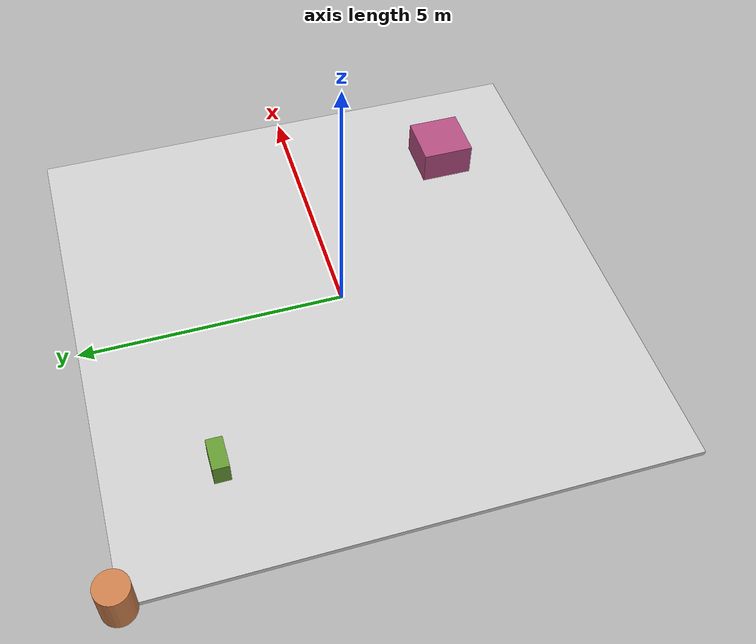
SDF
<sdf version="1.7">
 <world name="smartfarm_slam_world">
  <scene><ambient>0.5 0.5 0.5 1</ambient><grid>true</grid><sky><clouds><speed>5</speed></clouds></sky></scene>
  <light type="directional" name="sunlight">
   <pose>0 0 10 0.6 0 0</pose>
   <diffuse>1 1 1 1</diffuse>
   <specular>0.1 0.1 0.1 1</specular>
   <attenuation>
    <range>100</range>
    <constant>0.9</constant>
    <linear>0.01</linear>
    <quadratic>0.001</quadratic>
   </attenuation>
   <direction>-0.5 0.5 -1</direction>
  </light>
  <model name="floor">
   <static>true</static>
   <link name="floor_link">
    <visual name="floor_visual">
     <geometry><box><size>10 10 0.1</size></box></geometry>
     <material><ambient>0.8 0.8 0.8 1</ambient></material>
    </visual>
    <collision name="floor_collision"><geometry><box><size>10 10 0.1</size></box></geometry></collision>
   </link>
  </model>
  <model name="farm_obstacles">
   <static>true</static>
   <link name="obstacles_link">
    <visual name="tool_1">
     <geometry><box><size>0.6 0.3 0.5</size></box></geometry>
     <pose>-3 3 0.25 0 0 0</pose>
     <material><ambient>0.4 0.6 0.2 1</ambient></material>
    </visual>
    <collision name="tool_1_collision">
     <geometry><box><size>0.6 0.3 0.5</size></box></geometry>
     <pose>-3 3 0.25 0 0 0</pose>
    </collision>
    <visual name="tool_2">
     <geometry><box><size>1 1 0.7</size></box></geometry>
     <pose>3 -3 0.35 0 0 0</pose>
     <material><ambient>0.7 0.3 0.5 1</ambient></material>
    </visual>
    <collision name="tool_2_collision">
     <geometry><box><size>1 1 0.7</size></box></geometry>
     <pose>3 -3 0.35 0 0 0</pose>
    </collision>
    <visual name="tool_3">
     <geometry><cylinder><radius>0.3</radius><length>0.8</length></cylinder></geometry>
     <pose>-5 5 0.4 0 0 0</pose>
     <material><ambient>0.8 0.5 0.3 1</ambient></material>
    </visual>
    <collision name="tool_3_collision">
     <geometry><cylinder><radius>0.3</radius><length>0.8</length></cylinder></geometry>
     <pose>-5 5 0.4 0 0 0</pose>
    </collision>
   </link>
  </model>
 </world>
</sdf>
